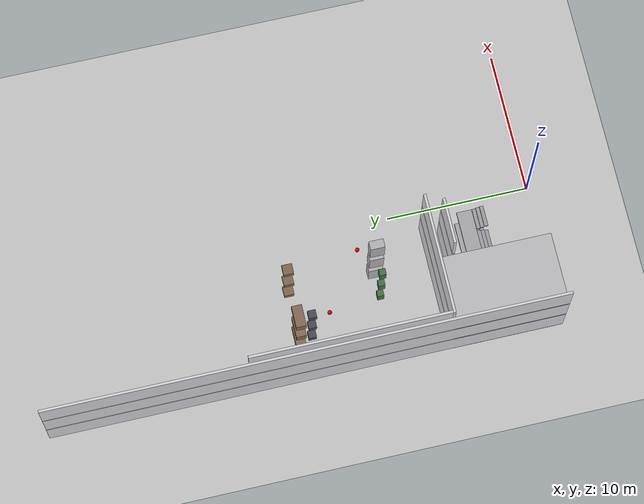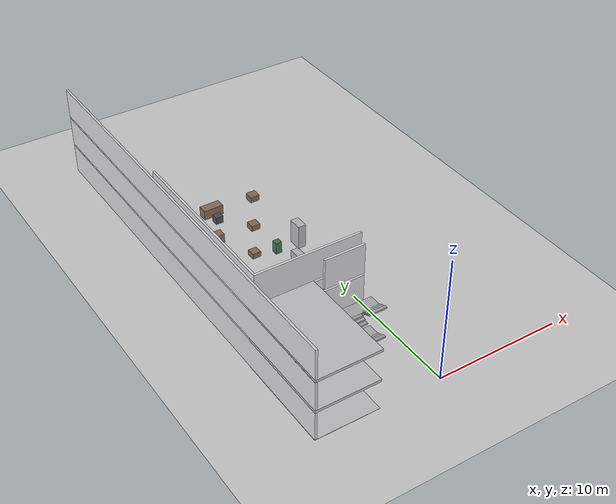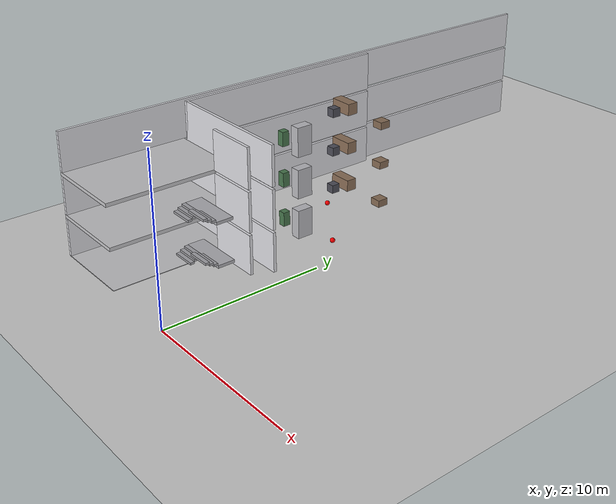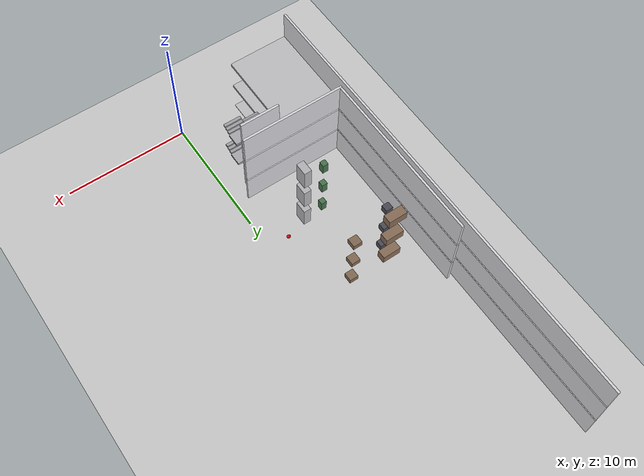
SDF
<sdf version="1.7">
 <world name="generated_world">
  <include><uri>model://sun</uri></include>
  <include><uri>model://ground_plane</uri></include>
  <model name="generated_building">
   <static>true</static>
   <link name="slab_floor_0_1">
    <pose>-7.4700 3.9250 -0.1100 0.0000 0.0000 0.0000</pose>
    <collision name="slab_floor_0_1_collision">
     <geometry><box><size>5.0600 7.8500 0.2200</size></box></geometry>
    </collision>
    <visual name="slab_floor_0_1_visual">
     <geometry><box><size>5.0600 7.8500 0.2200</size></box></geometry>
     <material><ambient>0.76 0.76 0.77 1</ambient><diffuse>0.76 0.76 0.77 1</diffuse></material>
    </visual>
    <gravity>false</gravity>
   </link>
   <link name="exterior_west_floor_0">
    <pose>-9.9100 18.0000 1.2250 0.0000 0.0000 0.0000</pose>
    <collision name="exterior_west_floor_0_collision">
     <geometry><box><size>0.1800 36.0000 2.4500</size></box></geometry>
    </collision>
    <visual name="exterior_west_floor_0_visual">
     <geometry><box><size>0.1800 36.0000 2.4500</size></box></geometry>
     <material><ambient>0.86 0.86 0.88 1</ambient><diffuse>0.86 0.86 0.88 1</diffuse></material>
    </visual>
    <gravity>false</gravity>
   </link>
   <link name="floor_0_room_0_west_wall">
    <pose>-9.4100 14.8650 1.2250 0.0000 0.0000 0.0000</pose>
    <collision name="floor_0_room_0_west_wall_collision">
     <geometry><box><size>0.1800 14.0300 2.4500</size></box></geometry>
    </collision>
    <visual name="floor_0_room_0_west_wall_visual">
     <geometry><box><size>0.1800 14.0300 2.4500</size></box></geometry>
     <material><ambient>0.86 0.86 0.88 1</ambient><diffuse>0.86 0.86 0.88 1</diffuse></material>
    </visual>
    <gravity>false</gravity>
   </link>
   <link name="floor_0_room_0_south_wall">
    <pose>-5.3000 7.9400 1.2250 0.0000 0.0000 0.0000</pose>
    <collision name="floor_0_room_0_south_wall_collision">
     <geometry><box><size>8.4000 0.1800 2.4500</size></box></geometry>
    </collision>
    <visual name="floor_0_room_0_south_wall_visual">
     <geometry><box><size>8.4000 0.1800 2.4500</size></box></geometry>
     <material><ambient>0.86 0.86 0.88 1</ambient><diffuse>0.86 0.86 0.88 1</diffuse></material>
    </visual>
    <gravity>false</gravity>
   </link>
   <link name="stair_core_floor_0_north">
    <pose>-3.2500 6.7600 1.2250 0.0000 0.0000 0.0000</pose>
    <collision name="stair_core_floor_0_north_collision">
     <geometry><box><size>3.2000 0.1800 2.4500</size></box></geometry>
    </collision>
    <visual name="stair_core_floor_0_north_visual">
     <geometry><box><size>3.2000 0.1800 2.4500</size></box></geometry>
     <material><ambient>0.86 0.86 0.88 1</ambient><diffuse>0.86 0.86 0.88 1</diffuse></material>
    </visual>
    <gravity>false</gravity>
   </link>
   <link name="floor_0_room_0_desk">
    <pose>-7.0000 17.9225 0.4500 0.0000 0.0000 0.0000</pose>
    <collision name="floor_0_room_0_desk_collision">
     <geometry><box><size>1.5000 0.7000 0.7500</size></box></geometry>
    </collision>
    <visual name="floor_0_room_0_desk_visual">
     <geometry><box><size>1.5000 0.7000 0.7500</size></box></geometry>
     <material><ambient>0.54 0.43 0.34 1</ambient><diffuse>0.54 0.43 0.34 1</diffuse></material>
    </visual>
    <gravity>false</gravity>
   </link>
   <link name="floor_0_room_0_chair">
    <pose>-7.0000 17.0225 0.2800 0.0000 0.0000 0.0000</pose>
    <collision name="floor_0_room_0_chair_collision">
     <geometry><box><size>0.5500 0.5500 0.5500</size></box></geometry>
    </collision>
    <visual name="floor_0_room_0_chair_visual">
     <geometry><box><size>0.5500 0.5500 0.5500</size></box></geometry>
     <material><ambient>0.30 0.30 0.34 1</ambient><diffuse>0.30 0.30 0.34 1</diffuse></material>
    </visual>
    <gravity>false</gravity>
   </link>
   <link name="floor_0_room_0_cabinet">
    <pose>-3.6000 11.8075 0.9000 0.0000 0.0000 0.0000</pose>
    <collision name="floor_0_room_0_cabinet_collision">
     <geometry><box><size>0.6000 1.0000 1.8000</size></box></geometry>
    </collision>
    <visual name="floor_0_room_0_cabinet_visual">
     <geometry><box><size>0.6000 1.0000 1.8000</size></box></geometry>
     <material><ambient>0.72 0.72 0.74 1</ambient><diffuse>0.72 0.72 0.74 1</diffuse></material>
    </visual>
    <gravity>false</gravity>
   </link>
   <link name="floor_0_room_0_side_table">
    <pose>-3.6000 17.9225 0.3200 0.0000 0.0000 0.0000</pose>
    <collision name="floor_0_room_0_side_table_collision">
     <geometry><box><size>0.7000 0.7000 0.4500</size></box></geometry>
    </collision>
    <visual name="floor_0_room_0_side_table_visual">
     <geometry><box><size>0.7000 0.7000 0.4500</size></box></geometry>
     <material><ambient>0.52 0.42 0.33 1</ambient><diffuse>0.52 0.42 0.33 1</diffuse></material>
    </visual>
    <gravity>false</gravity>
   </link>
   <link name="floor_0_room_0_planter">
    <pose>-5.3000 11.8075 0.4500 0.0000 0.0000 0.0000</pose>
    <collision name="floor_0_room_0_planter_collision">
     <geometry><box><size>0.4500 0.4500 0.9000</size></box></geometry>
    </collision>
    <visual name="floor_0_room_0_planter_visual">
     <geometry><box><size>0.4500 0.4500 0.9000</size></box></geometry>
     <material><ambient>0.28 0.46 0.30 1</ambient><diffuse>0.28 0.46 0.30 1</diffuse></material>
    </visual>
    <gravity>false</gravity>
   </link>
   <link name="slab_floor_1_1">
    <pose>-7.4700 3.9250 2.4900 0.0000 0.0000 0.0000</pose>
    <collision name="slab_floor_1_1_collision">
     <geometry><box><size>5.0600 7.8500 0.2200</size></box></geometry>
    </collision>
    <visual name="slab_floor_1_1_visual">
     <geometry><box><size>5.0600 7.8500 0.2200</size></box></geometry>
     <material><ambient>0.76 0.76 0.77 1</ambient><diffuse>0.76 0.76 0.77 1</diffuse></material>
    </visual>
    <gravity>false</gravity>
   </link>
   <link name="exterior_west_floor_1">
    <pose>-9.9100 18.0000 3.8250 0.0000 0.0000 0.0000</pose>
    <collision name="exterior_west_floor_1_collision">
     <geometry><box><size>0.1800 36.0000 2.4500</size></box></geometry>
    </collision>
    <visual name="exterior_west_floor_1_visual">
     <geometry><box><size>0.1800 36.0000 2.4500</size></box></geometry>
     <material><ambient>0.86 0.86 0.88 1</ambient><diffuse>0.86 0.86 0.88 1</diffuse></material>
    </visual>
    <gravity>false</gravity>
   </link>
   <link name="floor_1_room_0_west_wall">
    <pose>-9.4100 14.8650 3.8250 0.0000 0.0000 0.0000</pose>
    <collision name="floor_1_room_0_west_wall_collision">
     <geometry><box><size>0.1800 14.0300 2.4500</size></box></geometry>
    </collision>
    <visual name="floor_1_room_0_west_wall_visual">
     <geometry><box><size>0.1800 14.0300 2.4500</size></box></geometry>
     <material><ambient>0.86 0.86 0.88 1</ambient><diffuse>0.86 0.86 0.88 1</diffuse></material>
    </visual>
    <gravity>false</gravity>
   </link>
   <link name="floor_1_room_0_south_wall">
    <pose>-5.3000 7.9400 3.8250 0.0000 0.0000 0.0000</pose>
    <collision name="floor_1_room_0_south_wall_collision">
     <geometry><box><size>8.4000 0.1800 2.4500</size></box></geometry>
    </collision>
    <visual name="floor_1_room_0_south_wall_visual">
     <geometry><box><size>8.4000 0.1800 2.4500</size></box></geometry>
     <material><ambient>0.86 0.86 0.88 1</ambient><diffuse>0.86 0.86 0.88 1</diffuse></material>
    </visual>
    <gravity>false</gravity>
   </link>
   <link name="stair_core_floor_1_north">
    <pose>-3.2500 6.7600 3.8250 0.0000 0.0000 0.0000</pose>
    <collision name="stair_core_floor_1_north_collision">
     <geometry><box><size>3.2000 0.1800 2.4500</size></box></geometry>
    </collision>
    <visual name="stair_core_floor_1_north_visual">
     <geometry><box><size>3.2000 0.1800 2.4500</size></box></geometry>
     <material><ambient>0.86 0.86 0.88 1</ambient><diffuse>0.86 0.86 0.88 1</diffuse></material>
    </visual>
    <gravity>false</gravity>
   </link>
   <link name="floor_1_room_0_desk">
    <pose>-7.0000 17.9225 3.0500 0.0000 0.0000 0.0000</pose>
    <collision name="floor_1_room_0_desk_collision">
     <geometry><box><size>1.5000 0.7000 0.7500</size></box></geometry>
    </collision>
    <visual name="floor_1_room_0_desk_visual">
     <geometry><box><size>1.5000 0.7000 0.7500</size></box></geometry>
     <material><ambient>0.54 0.43 0.34 1</ambient><diffuse>0.54 0.43 0.34 1</diffuse></material>
    </visual>
    <gravity>false</gravity>
   </link>
   <link name="floor_1_room_0_chair">
    <pose>-7.0000 17.0225 2.8800 0.0000 0.0000 0.0000</pose>
    <collision name="floor_1_room_0_chair_collision">
     <geometry><box><size>0.5500 0.5500 0.5500</size></box></geometry>
    </collision>
    <visual name="floor_1_room_0_chair_visual">
     <geometry><box><size>0.5500 0.5500 0.5500</size></box></geometry>
     <material><ambient>0.30 0.30 0.34 1</ambient><diffuse>0.30 0.30 0.34 1</diffuse></material>
    </visual>
    <gravity>false</gravity>
   </link>
   <link name="floor_1_room_0_cabinet">
    <pose>-3.6000 11.8075 3.5000 0.0000 0.0000 0.0000</pose>
    <collision name="floor_1_room_0_cabinet_collision">
     <geometry><box><size>0.6000 1.0000 1.8000</size></box></geometry>
    </collision>
    <visual name="floor_1_room_0_cabinet_visual">
     <geometry><box><size>0.6000 1.0000 1.8000</size></box></geometry>
     <material><ambient>0.72 0.72 0.74 1</ambient><diffuse>0.72 0.72 0.74 1</diffuse></material>
    </visual>
    <gravity>false</gravity>
   </link>
   <link name="floor_1_room_0_side_table">
    <pose>-3.6000 17.9225 2.9200 0.0000 0.0000 0.0000</pose>
    <collision name="floor_1_room_0_side_table_collision">
     <geometry><box><size>0.7000 0.7000 0.4500</size></box></geometry>
    </collision>
    <visual name="floor_1_room_0_side_table_visual">
     <geometry><box><size>0.7000 0.7000 0.4500</size></box></geometry>
     <material><ambient>0.52 0.42 0.33 1</ambient><diffuse>0.52 0.42 0.33 1</diffuse></material>
    </visual>
    <gravity>false</gravity>
   </link>
   <link name="floor_1_room_0_planter">
    <pose>-5.3000 11.8075 3.0500 0.0000 0.0000 0.0000</pose>
    <collision name="floor_1_room_0_planter_collision">
     <geometry><box><size>0.4500 0.4500 0.9000</size></box></geometry>
    </collision>
    <visual name="floor_1_room_0_planter_visual">
     <geometry><box><size>0.4500 0.4500 0.9000</size></box></geometry>
     <material><ambient>0.28 0.46 0.30 1</ambient><diffuse>0.28 0.46 0.30 1</diffuse></material>
    </visual>
    <gravity>false</gravity>
   </link>
   <link name="slab_floor_2_1">
    <pose>-7.4700 3.9250 5.0900 0.0000 0.0000 0.0000</pose>
    <collision name="slab_floor_2_1_collision">
     <geometry><box><size>5.0600 7.8500 0.2200</size></box></geometry>
    </collision>
    <visual name="slab_floor_2_1_visual">
     <geometry><box><size>5.0600 7.8500 0.2200</size></box></geometry>
     <material><ambient>0.76 0.76 0.77 1</ambient><diffuse>0.76 0.76 0.77 1</diffuse></material>
    </visual>
    <gravity>false</gravity>
   </link>
   <link name="exterior_west_floor_2">
    <pose>-9.9100 18.0000 6.4250 0.0000 0.0000 0.0000</pose>
    <collision name="exterior_west_floor_2_collision">
     <geometry><box><size>0.1800 36.0000 2.4500</size></box></geometry>
    </collision>
    <visual name="exterior_west_floor_2_visual">
     <geometry><box><size>0.1800 36.0000 2.4500</size></box></geometry>
     <material><ambient>0.86 0.86 0.88 1</ambient><diffuse>0.86 0.86 0.88 1</diffuse></material>
    </visual>
    <gravity>false</gravity>
   </link>
   <link name="floor_2_room_0_west_wall">
    <pose>-9.4100 14.8650 6.4250 0.0000 0.0000 0.0000</pose>
    <collision name="floor_2_room_0_west_wall_collision">
     <geometry><box><size>0.1800 14.0300 2.4500</size></box></geometry>
    </collision>
    <visual name="floor_2_room_0_west_wall_visual">
     <geometry><box><size>0.1800 14.0300 2.4500</size></box></geometry>
     <material><ambient>0.86 0.86 0.88 1</ambient><diffuse>0.86 0.86 0.88 1</diffuse></material>
    </visual>
    <gravity>false</gravity>
   </link>
   <link name="floor_2_room_0_south_wall">
    <pose>-5.3000 7.9400 6.4250 0.0000 0.0000 0.0000</pose>
    <collision name="floor_2_room_0_south_wall_collision">
     <geometry><box><size>8.4000 0.1800 2.4500</size></box></geometry>
    </collision>
    <visual name="floor_2_room_0_south_wall_visual">
     <geometry><box><size>8.4000 0.1800 2.4500</size></box></geometry>
     <material><ambient>0.86 0.86 0.88 1</ambient><diffuse>0.86 0.86 0.88 1</diffuse></material>
    </visual>
    <gravity>false</gravity>
   </link>
   <link name="stair_core_floor_2_north">
    <pose>-3.2500 6.7600 6.4250 0.0000 0.0000 0.0000</pose>
    <collision name="stair_core_floor_2_north_collision">
     <geometry><box><size>3.2000 0.1800 2.4500</size></box></geometry>
    </collision>
    <visual name="stair_core_floor_2_north_visual">
     <geometry><box><size>3.2000 0.1800 2.4500</size></box></geometry>
     <material><ambient>0.86 0.86 0.88 1</ambient><diffuse>0.86 0.86 0.88 1</diffuse></material>
    </visual>
    <gravity>false</gravity>
   </link>
   <link name="floor_2_room_0_desk">
    <pose>-7.0000 17.9225 5.6500 0.0000 0.0000 0.0000</pose>
    <collision name="floor_2_room_0_desk_collision">
     <geometry><box><size>1.5000 0.7000 0.7500</size></box></geometry>
    </collision>
    <visual name="floor_2_room_0_desk_visual">
     <geometry><box><size>1.5000 0.7000 0.7500</size></box></geometry>
     <material><ambient>0.54 0.43 0.34 1</ambient><diffuse>0.54 0.43 0.34 1</diffuse></material>
    </visual>
    <gravity>false</gravity>
   </link>
   <link name="floor_2_room_0_chair">
    <pose>-7.0000 17.0225 5.4800 0.0000 0.0000 0.0000</pose>
    <collision name="floor_2_room_0_chair_collision">
     <geometry><box><size>0.5500 0.5500 0.5500</size></box></geometry>
    </collision>
    <visual name="floor_2_room_0_chair_visual">
     <geometry><box><size>0.5500 0.5500 0.5500</size></box></geometry>
     <material><ambient>0.30 0.30 0.34 1</ambient><diffuse>0.30 0.30 0.34 1</diffuse></material>
    </visual>
    <gravity>false</gravity>
   </link>
   <link name="floor_2_room_0_cabinet">
    <pose>-3.6000 11.8075 6.1000 0.0000 0.0000 0.0000</pose>
    <collision name="floor_2_room_0_cabinet_collision">
     <geometry><box><size>0.6000 1.0000 1.8000</size></box></geometry>
    </collision>
    <visual name="floor_2_room_0_cabinet_visual">
     <geometry><box><size>0.6000 1.0000 1.8000</size></box></geometry>
     <material><ambient>0.72 0.72 0.74 1</ambient><diffuse>0.72 0.72 0.74 1</diffuse></material>
    </visual>
    <gravity>false</gravity>
   </link>
   <link name="floor_2_room_0_side_table">
    <pose>-3.6000 17.9225 5.5200 0.0000 0.0000 0.0000</pose>
    <collision name="floor_2_room_0_side_table_collision">
     <geometry><box><size>0.7000 0.7000 0.4500</size></box></geometry>
    </collision>
    <visual name="floor_2_room_0_side_table_visual">
     <geometry><box><size>0.7000 0.7000 0.4500</size></box></geometry>
     <material><ambient>0.52 0.42 0.33 1</ambient><diffuse>0.52 0.42 0.33 1</diffuse></material>
    </visual>
    <gravity>false</gravity>
   </link>
   <link name="floor_2_room_0_planter">
    <pose>-5.3000 11.8075 5.6500 0.0000 0.0000 0.0000</pose>
    <collision name="floor_2_room_0_planter_collision">
     <geometry><box><size>0.4500 0.4500 0.9000</size></box></geometry>
    </collision>
    <visual name="floor_2_room_0_planter_visual">
     <geometry><box><size>0.4500 0.4500 0.9000</size></box></geometry>
     <material><ambient>0.28 0.46 0.30 1</ambient><diffuse>0.28 0.46 0.30 1</diffuse></material>
    </visual>
    <gravity>false</gravity>
   </link>
   <link name="stair_flight_a_floor_0_step_7">
    <pose>-4.0150 4.0000 0.9750 0.0000 0.0000 0.0000</pose>
    <collision name="stair_flight_a_floor_0_step_7_collision">
     <geometry><box><size>1.4300 0.2600 0.1300</size></box></geometry>
    </collision>
    <visual name="stair_flight_a_floor_0_step_7_visual">
     <geometry><box><size>1.4300 0.2600 0.1300</size></box></geometry>
     <material><ambient>0.64 0.64 0.66 1</ambient><diffuse>0.64 0.64 0.66 1</diffuse></material>
    </visual>
    <gravity>false</gravity>
   </link>
   <link name="stair_flight_a_floor_0_step_8">
    <pose>-4.0150 4.2600 1.1050 0.0000 0.0000 0.0000</pose>
    <collision name="stair_flight_a_floor_0_step_8_collision">
     <geometry><box><size>1.4300 0.2600 0.1300</size></box></geometry>
    </collision>
    <visual name="stair_flight_a_floor_0_step_8_visual">
     <geometry><box><size>1.4300 0.2600 0.1300</size></box></geometry>
     <material><ambient>0.64 0.64 0.66 1</ambient><diffuse>0.64 0.64 0.66 1</diffuse></material>
    </visual>
    <gravity>false</gravity>
   </link>
   <link name="stair_flight_a_floor_0_step_9">
    <pose>-4.0150 4.5200 1.2350 0.0000 0.0000 0.0000</pose>
    <collision name="stair_flight_a_floor_0_step_9_collision">
     <geometry><box><size>1.4300 0.2600 0.1300</size></box></geometry>
    </collision>
    <visual name="stair_flight_a_floor_0_step_9_visual">
     <geometry><box><size>1.4300 0.2600 0.1300</size></box></geometry>
     <material><ambient>0.64 0.64 0.66 1</ambient><diffuse>0.64 0.64 0.66 1</diffuse></material>
    </visual>
    <gravity>false</gravity>
   </link>
   <link name="stair_turn_landing_floor_0">
    <pose>-3.2500 5.1750 1.2100 0.0000 0.0000 0.0000</pose>
    <collision name="stair_turn_landing_floor_0_collision">
     <geometry><box><size>3.0200 1.0500 0.1800</size></box></geometry>
    </collision>
    <visual name="stair_turn_landing_floor_0_visual">
     <geometry><box><size>3.0200 1.0500 0.1800</size></box></geometry>
     <material><ambient>0.68 0.68 0.70 1</ambient><diffuse>0.68 0.68 0.70 1</diffuse></material>
    </visual>
    <gravity>false</gravity>
   </link>
   <link name="stair_flight_b_floor_0_step_0">
    <pose>-2.4850 4.5200 1.3650 0.0000 0.0000 0.0000</pose>
    <collision name="stair_flight_b_floor_0_step_0_collision">
     <geometry><box><size>1.4300 0.2600 0.1300</size></box></geometry>
    </collision>
    <visual name="stair_flight_b_floor_0_step_0_visual">
     <geometry><box><size>1.4300 0.2600 0.1300</size></box></geometry>
     <material><ambient>0.64 0.64 0.66 1</ambient><diffuse>0.64 0.64 0.66 1</diffuse></material>
    </visual>
    <gravity>false</gravity>
   </link>
   <link name="stair_flight_b_floor_0_step_1">
    <pose>-2.4850 4.2600 1.4950 0.0000 0.0000 0.0000</pose>
    <collision name="stair_flight_b_floor_0_step_1_collision">
     <geometry><box><size>1.4300 0.2600 0.1300</size></box></geometry>
    </collision>
    <visual name="stair_flight_b_floor_0_step_1_visual">
     <geometry><box><size>1.4300 0.2600 0.1300</size></box></geometry>
     <material><ambient>0.64 0.64 0.66 1</ambient><diffuse>0.64 0.64 0.66 1</diffuse></material>
    </visual>
    <gravity>false</gravity>
   </link>
   <link name="stair_flight_b_floor_0_step_2">
    <pose>-2.4850 4.0000 1.6250 0.0000 0.0000 0.0000</pose>
    <collision name="stair_flight_b_floor_0_step_2_collision">
     <geometry><box><size>1.4300 0.2600 0.1300</size></box></geometry>
    </collision>
    <visual name="stair_flight_b_floor_0_step_2_visual">
     <geometry><box><size>1.4300 0.2600 0.1300</size></box></geometry>
     <material><ambient>0.64 0.64 0.66 1</ambient><diffuse>0.64 0.64 0.66 1</diffuse></material>
    </visual>
    <gravity>false</gravity>
   </link>
   <link name="stair_flight_a_floor_1_step_7">
    <pose>-4.0150 4.0000 3.5750 0.0000 0.0000 0.0000</pose>
    <collision name="stair_flight_a_floor_1_step_7_collision">
     <geometry><box><size>1.4300 0.2600 0.1300</size></box></geometry>
    </collision>
    <visual name="stair_flight_a_floor_1_step_7_visual">
     <geometry><box><size>1.4300 0.2600 0.1300</size></box></geometry>
     <material><ambient>0.64 0.64 0.66 1</ambient><diffuse>0.64 0.64 0.66 1</diffuse></material>
    </visual>
    <gravity>false</gravity>
   </link>
   <link name="stair_flight_a_floor_1_step_8">
    <pose>-4.0150 4.2600 3.7050 0.0000 0.0000 0.0000</pose>
    <collision name="stair_flight_a_floor_1_step_8_collision">
     <geometry><box><size>1.4300 0.2600 0.1300</size></box></geometry>
    </collision>
    <visual name="stair_flight_a_floor_1_step_8_visual">
     <geometry><box><size>1.4300 0.2600 0.1300</size></box></geometry>
     <material><ambient>0.64 0.64 0.66 1</ambient><diffuse>0.64 0.64 0.66 1</diffuse></material>
    </visual>
    <gravity>false</gravity>
   </link>
   <link name="stair_flight_a_floor_1_step_9">
    <pose>-4.0150 4.5200 3.8350 0.0000 0.0000 0.0000</pose>
    <collision name="stair_flight_a_floor_1_step_9_collision">
     <geometry><box><size>1.4300 0.2600 0.1300</size></box></geometry>
    </collision>
    <visual name="stair_flight_a_floor_1_step_9_visual">
     <geometry><box><size>1.4300 0.2600 0.1300</size></box></geometry>
     <material><ambient>0.64 0.64 0.66 1</ambient><diffuse>0.64 0.64 0.66 1</diffuse></material>
    </visual>
    <gravity>false</gravity>
   </link>
   <link name="stair_turn_landing_floor_1">
    <pose>-3.2500 5.1750 3.8100 0.0000 0.0000 0.0000</pose>
    <collision name="stair_turn_landing_floor_1_collision">
     <geometry><box><size>3.0200 1.0500 0.1800</size></box></geometry>
    </collision>
    <visual name="stair_turn_landing_floor_1_visual">
     <geometry><box><size>3.0200 1.0500 0.1800</size></box></geometry>
     <material><ambient>0.68 0.68 0.70 1</ambient><diffuse>0.68 0.68 0.70 1</diffuse></material>
    </visual>
    <gravity>false</gravity>
   </link>
   <link name="stair_flight_b_floor_1_step_0">
    <pose>-2.4850 4.5200 3.9650 0.0000 0.0000 0.0000</pose>
    <collision name="stair_flight_b_floor_1_step_0_collision">
     <geometry><box><size>1.4300 0.2600 0.1300</size></box></geometry>
    </collision>
    <visual name="stair_flight_b_floor_1_step_0_visual">
     <geometry><box><size>1.4300 0.2600 0.1300</size></box></geometry>
     <material><ambient>0.64 0.64 0.66 1</ambient><diffuse>0.64 0.64 0.66 1</diffuse></material>
    </visual>
    <gravity>false</gravity>
   </link>
   <link name="stair_flight_b_floor_1_step_1">
    <pose>-2.4850 4.2600 4.0950 0.0000 0.0000 0.0000</pose>
    <collision name="stair_flight_b_floor_1_step_1_collision">
     <geometry><box><size>1.4300 0.2600 0.1300</size></box></geometry>
    </collision>
    <visual name="stair_flight_b_floor_1_step_1_visual">
     <geometry><box><size>1.4300 0.2600 0.1300</size></box></geometry>
     <material><ambient>0.64 0.64 0.66 1</ambient><diffuse>0.64 0.64 0.66 1</diffuse></material>
    </visual>
    <gravity>false</gravity>
   </link>
   <link name="stair_flight_b_floor_1_step_2">
    <pose>-2.4850 4.0000 4.2250 0.0000 0.0000 0.0000</pose>
    <collision name="stair_flight_b_floor_1_step_2_collision">
     <geometry><box><size>1.4300 0.2600 0.1300</size></box></geometry>
    </collision>
    <visual name="stair_flight_b_floor_1_step_2_visual">
     <geometry><box><size>1.4300 0.2600 0.1300</size></box></geometry>
     <material><ambient>0.64 0.64 0.66 1</ambient><diffuse>0.64 0.64 0.66 1</diffuse></material>
    </visual>
    <gravity>false</gravity>
   </link>
  </model>
  <model name="danger_red_sphere_00">
   <static>true</static>
   <pose>-5.680637 15.456406 0.150000 0.000000 0.000000 0.000000</pose>
   <link name="link">
    <collision name="collision"><geometry><sphere><radius>0.150</radius></sphere></geometry></collision>
    <visual name="visual">
     <geometry><sphere><radius>0.150</radius></sphere></geometry>
     <material><ambient>1.0 0.0 0.0 1.0</ambient><diffuse>1.0 0.0 0.0 1.0</diffuse></material>
    </visual>
   </link>
  </model>
  <model name="danger_red_sphere_05">
   <static>true</static>
   <pose>-1.724043 12.576744 0.150000 0.000000 0.000000 0.000000</pose>
   <link name="link">
    <collision name="collision"><geometry><sphere><radius>0.150</radius></sphere></geometry></collision>
    <visual name="visual">
     <geometry><sphere><radius>0.150</radius></sphere></geometry>
     <material><ambient>1.0 0.0 0.0 1.0</ambient><diffuse>1.0 0.0 0.0 1.0</diffuse></material>
    </visual>
   </link>
  </model>
 </world>
</sdf>
